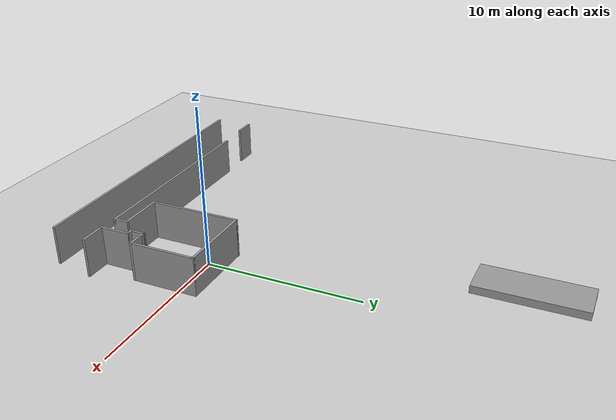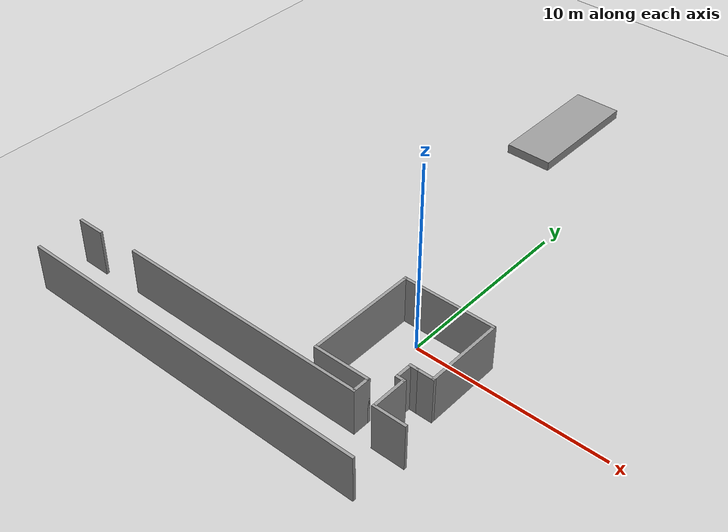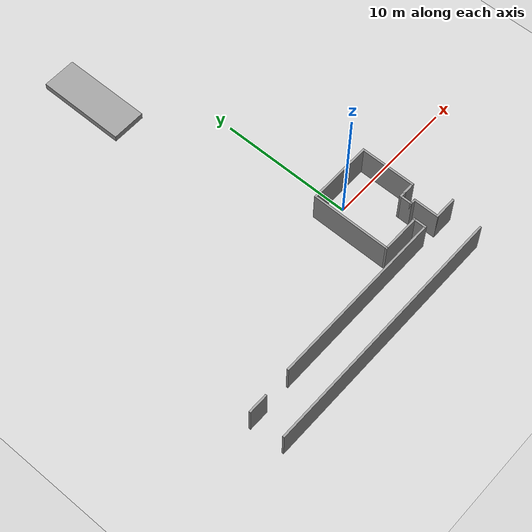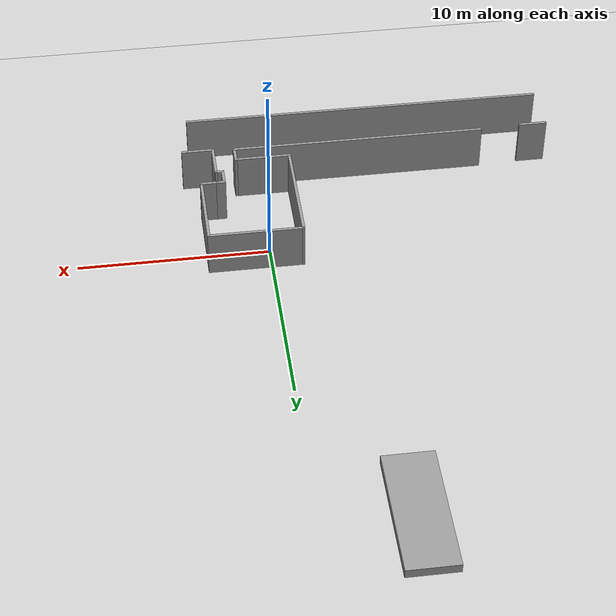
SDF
<sdf version="1.6">
 <world name="default">
  <model name="ground_plane">
   <static>1</static>
   <link name="link">
    <collision name="collision">
     <geometry><plane><normal>0 0 1</normal><size>100 100</size></plane></geometry>
     <surface><friction><ode><mu>100</mu><mu2>50</mu2></ode></friction></surface>
    </collision>
    <visual name="visual">
     <cast_shadows>0</cast_shadows>
     <geometry><plane><normal>0 0 1</normal><size>100 100</size></plane></geometry>
     <material>
      <script><uri>file://media/materials/scripts/gazebo.material</uri><name>Gazebo/Grey</name></script>
     </material>
    </visual>
   </link>
  </model>
  <model name="HRI_MAP">
   <pose>-5.86756 7.56266 0 0 -0 0</pose>
   <link name="Stairs_10">
    <visual name="Stairs_10_Visual_0">
     <pose>1.21481 10.9204 0.25 0 -0 0</pose>
     <geometry><box><size>2.592 6.736 0.5</size></box></geometry>
     <material>
      <script><uri>file://media/materials/scripts/gazebo.material</uri><name>Gazebo/Grey</name></script>
      <ambient>1 1 1 1</ambient>
     </material>
    </visual>
    <collision name="Stairs_10_Collision_0">
     <geometry><box><size>2.592 6.736 0.5</size></box></geometry>
     <pose>1.21481 10.9204 0.25 0 -0 0</pose>
    </collision>
   </link>
   <link name="Wall_1">
    <collision name="Wall_1_Collision">
     <geometry><box><size>1 0.15 2.5</size></box></geometry>
     <pose>0 0 1.25 0 -0 0</pose>
    </collision>
    <visual name="Wall_1_Visual">
     <pose>0 0 1.25 0 -0 0</pose>
     <geometry><box><size>1 0.15 2.5</size></box></geometry>
     <material>
      <script><uri>file://media/materials/scripts/gazebo.material</uri><name>Gazebo/Grey</name></script>
      <ambient>1 1 1 1</ambient>
     </material>
    </visual>
    <pose>7.09624 -12.7378 0 0 0 -1.5708</pose>
   </link>
   <link name="Wall_10">
    <collision name="Wall_10_Collision">
     <geometry><box><size>0.5 0.15 2.5</size></box></geometry>
     <pose>0 0 1.25 0 -0 0</pose>
    </collision>
    <visual name="Wall_10_Visual">
     <pose>0 0 1.25 0 -0 0</pose>
     <geometry><box><size>0.5 0.15 2.5</size></box></geometry>
     <material>
      <script><uri>file://media/materials/scripts/gazebo.material</uri><name>Gazebo/Grey</name></script>
      <ambient>1 1 1 1</ambient>
     </material>
    </visual>
    <pose>8.07124 -11.4128 0 0 -0 0</pose>
   </link>
   <link name="Wall_11">
    <collision name="Wall_11_Collision">
     <geometry><box><size>2 0.15 2.5</size></box></geometry>
     <pose>0 0 1.25 0 -0 0</pose>
    </collision>
    <visual name="Wall_11_Visual">
     <pose>0 0 1.25 0 -0 0</pose>
     <geometry><box><size>2 0.15 2.5</size></box></geometry>
     <material>
      <script><uri>file://media/materials/scripts/gazebo.material</uri><name>Gazebo/Grey</name></script>
      <ambient>1 1 1 1</ambient>
     </material>
    </visual>
    <pose>8.24624 -12.3378 0 0 0 -1.5708</pose>
   </link>
   <link name="Wall_13">
    <collision name="Wall_13_Collision">
     <geometry><box><size>13.5 0.15 2.5</size></box></geometry>
     <pose>0 0 1.25 0 -0 0</pose>
    </collision>
    <visual name="Wall_13_Visual">
     <pose>0 0 1.25 0 -0 0</pose>
     <geometry><box><size>13.5 0.15 2.5</size></box></geometry>
     <material>
      <script><uri>file://media/materials/scripts/gazebo.material</uri><name>Gazebo/Grey</name></script>
      <ambient>1 1 1 1</ambient>
     </material>
    </visual>
    <pose>0.421236 -13.1628 0 0 -0 3.14159</pose>
   </link>
   <link name="Wall_15">
    <collision name="Wall_15_Collision">
     <geometry><box><size>1.75 0.15 2.5</size></box></geometry>
     <pose>0 0 1.25 0 -0 0</pose>
    </collision>
    <visual name="Wall_15_Visual">
     <pose>0 0 1.25 0 -0 0</pose>
     <geometry><box><size>1.75 0.15 2.5</size></box></geometry>
     <material>
      <script><uri>file://media/materials/scripts/gazebo.material</uri><name>Gazebo/Grey</name></script>
      <ambient>1 1 1 1</ambient>
     </material>
    </visual>
    <pose>9.04624 -13.2628 0 0 -0 0</pose>
   </link>
   <link name="Wall_17">
    <collision name="Wall_17_Collision">
     <geometry><box><size>19.25 0.15 2.5</size></box></geometry>
     <pose>0 0 1.25 0 -0 0</pose>
    </collision>
    <visual name="Wall_17_Visual">
     <pose>0 0 1.25 0 -0 0</pose>
     <geometry><box><size>19.25 0.15 2.5</size></box></geometry>
     <material>
      <script><uri>file://media/materials/scripts/gazebo.material</uri><name>Gazebo/Grey</name></script>
      <ambient>1 1 1 1</ambient>
     </material>
    </visual>
    <pose>-0.177993 -15.8199 0 0 -0 3.14159</pose>
   </link>
   <link name="Wall_21">
    <collision name="Wall_21_Collision">
     <geometry><box><size>1.5 0.15 2.5</size></box></geometry>
     <pose>0 0 1.25 0 -0 0</pose>
    </collision>
    <visual name="Wall_21_Visual">
     <pose>0 0 1.25 0 -0 0</pose>
     <geometry><box><size>1.5 0.15 2.5</size></box></geometry>
     <material>
      <script><uri>file://media/materials/scripts/gazebo.material</uri><name>Gazebo/Grey</name></script>
      <ambient>1 1 1 1</ambient>
     </material>
    </visual>
    <pose>-9.17124 -13.2801 0 0 -0 0</pose>
   </link>
   <link name="Wall_3">
    <collision name="Wall_3_Collision">
     <geometry><box><size>3 0.15 2.5</size></box></geometry>
     <pose>0 0 1.25 0 -0 0</pose>
    </collision>
    <visual name="Wall_3_Visual">
     <pose>0 0 1.25 0 -0 0</pose>
     <geometry><box><size>3 0.15 2.5</size></box></geometry>
     <material>
      <script><uri>file://media/materials/scripts/gazebo.material</uri><name>Gazebo/Grey</name></script>
      <ambient>1 1 1 1</ambient>
     </material>
    </visual>
    <pose>5.67124 -12.3128 0 0 -0 3.14159</pose>
   </link>
   <link name="Wall_4">
    <collision name="Wall_4_Collision">
     <geometry><box><size>6 0.15 2.5</size></box></geometry>
     <pose>0 0 1.25 0 -0 0</pose>
    </collision>
    <visual name="Wall_4_Visual">
     <pose>0 0 1.25 0 -0 0</pose>
     <geometry><box><size>6 0.15 2.5</size></box></geometry>
     <material>
      <script><uri>file://media/materials/scripts/gazebo.material</uri><name>Gazebo/Grey</name></script>
      <ambient>1 1 1 1</ambient>
     </material>
    </visual>
    <pose>4.24624 -9.38776 0 0 -0 1.5708</pose>
   </link>
   <link name="Wall_5">
    <collision name="Wall_5_Collision">
     <geometry><box><size>5 0.15 2.5</size></box></geometry>
     <pose>0 0 1.25 0 -0 0</pose>
    </collision>
    <visual name="Wall_5_Visual">
     <pose>0 0 1.25 0 -0 0</pose>
     <geometry><box><size>5 0.15 2.5</size></box></geometry>
     <material>
      <script><uri>file://media/materials/scripts/gazebo.material</uri><name>Gazebo/Grey</name></script>
      <ambient>1 1 1 1</ambient>
     </material>
    </visual>
    <pose>6.67124 -6.46276 0 0 -0 0</pose>
   </link>
   <link name="Wall_6">
    <collision name="Wall_6_Collision">
     <geometry><box><size>4.25 0.15 2.5</size></box></geometry>
     <pose>0 0 1.25 0 -0 0</pose>
    </collision>
    <visual name="Wall_6_Visual">
     <pose>0 0 1.25 0 -0 0</pose>
     <geometry><box><size>4.25 0.15 2.5</size></box></geometry>
     <material>
      <script><uri>file://media/materials/scripts/gazebo.material</uri><name>Gazebo/Grey</name></script>
      <ambient>1 1 1 1</ambient>
     </material>
    </visual>
    <pose>9.09624 -8.51276 0 0 0 -1.5708</pose>
   </link>
   <link name="Wall_7">
    <collision name="Wall_7_Collision">
     <geometry><box><size>1 0.15 2.5</size></box></geometry>
     <pose>0 0 1.25 0 -0 0</pose>
    </collision>
    <visual name="Wall_7_Visual">
     <pose>0 0 1.25 0 -0 0</pose>
     <geometry><box><size>1 0.15 2.5</size></box></geometry>
     <material>
      <script><uri>file://media/materials/scripts/gazebo.material</uri><name>Gazebo/Grey</name></script>
      <ambient>1 1 1 1</ambient>
     </material>
    </visual>
    <pose>8.67124 -10.5628 0 0 -0 3.14159</pose>
   </link>
   <link name="Wall_8">
    <collision name="Wall_8_Collision">
     <geometry><box><size>0.5 0.15 2.5</size></box></geometry>
     <pose>0 0 1.25 0 -0 0</pose>
    </collision>
    <visual name="Wall_8_Visual">
     <pose>0 0 1.25 0 -0 0</pose>
     <geometry><box><size>0.5 0.15 2.5</size></box></geometry>
     <material>
      <script><uri>file://media/materials/scripts/gazebo.material</uri><name>Gazebo/Grey</name></script>
      <ambient>1 1 1 1</ambient>
     </material>
    </visual>
    <pose>8.07124 -10.5628 0 0 -0 3.14159</pose>
   </link>
   <link name="Wall_9">
    <collision name="Wall_9_Collision">
     <geometry><box><size>1 0.15 2.5</size></box></geometry>
     <pose>0 0 1.25 0 -0 0</pose>
    </collision>
    <visual name="Wall_9_Visual">
     <pose>0 0 1.25 0 -0 0</pose>
     <geometry><box><size>1 0.15 2.5</size></box></geometry>
     <material>
      <script><uri>file://media/materials/scripts/gazebo.material</uri><name>Gazebo/Grey</name></script>
      <ambient>1 1 1 1</ambient>
     </material>
    </visual>
    <pose>7.89624 -10.9878 0 0 0 -1.5708</pose>
   </link>
   <static>1</static>
  </model>
 </world>
</sdf>
